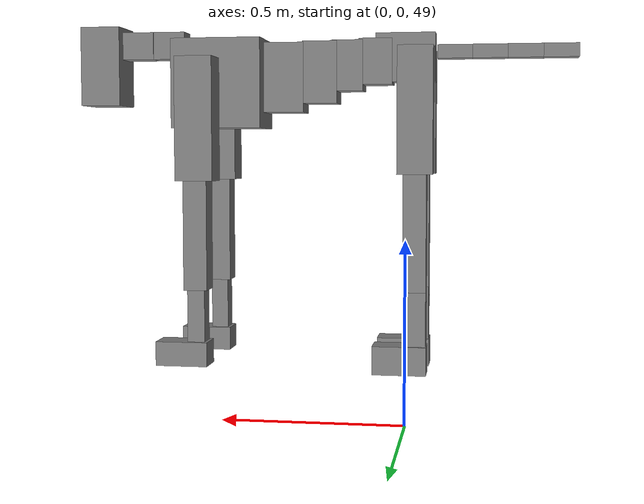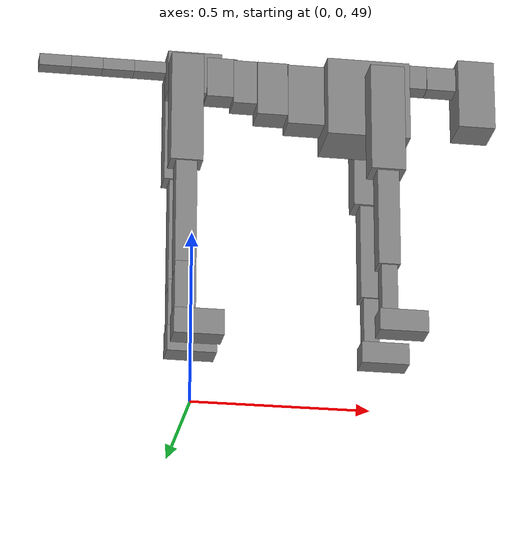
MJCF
<mujoco model="dog">

    <default>
        <joint armature="0.02" stiffness="1" damping="0.2" limited="true" />
        <geom condim="3" friction="1 0.05 0.05" margin="0.01" />
        <motor ctrllimited="true" ctrlrange="-1.0 1.0" forcelimited="true" gear="50" />
    </default>

    <compiler inertiafromgeom="true" angle="radian" />

    <option timestep="0.016" iterations="50" tolerance="1e-10" solver="Newton" jacobian="dense" cone="pyramidal" />

    <size nconmax="20000" njmax="60000" nstack="5000000" />
    <visual>
        <map force="0.1" zfar="30" />
        <rgba haze="0.15 0.25 0.35 1" />
        <quality shadowsize="2048" />
        <global offwidth="800" offheight="800" />
    </visual>

    <asset>
        <texture type="skybox" builtin="gradient" rgb1="0.3 0.5 0.7" rgb2="0 0 0" width="512" height="512" />
        <texture name="texplane" type="2d" builtin="checker" rgb1=".2 .3 .4" rgb2=".1 0.15 0.2" width="512" height="512" mark="cross" markrgb=".8 .8 .8" />
        <texture name="texgeom" type="cube" builtin="flat" mark="cross" width="127" height="1278" rgb1="0.8 0.6 0.4" rgb2="0.8 0.6 0.4" markrgb="1 1 1" random="0.01" />

        <material name="matplane" reflectance="0.3" texture="texplane" texrepeat="1 1" texuniform="true" />
        <material name="matgeom" texture="texgeom" texuniform="true" rgba="0.8 0.6 .4 1" />
    </asset>

    <worldbody>
        <geom name="floor" pos="0 0 0" size="0 0 .25" type="plane" material="matplane" condim="3" />

        <light directional="false" diffuse=".2 .2 .2" specular="0 0 0" pos="0 0 5" dir="0 0 -1" castshadow="false" />
        <light mode="targetbodycom" target="torso" directional="false" diffuse=".8 .8 .8" specular="0.3 0.3 0.3" pos="0 0 4.0" dir="0 0 -1" />

        <body name="root" pos="0 0 50">
            <freejoint name="root_1" />
            <geom type="box" pos="0 0 -0.02" size="0.0774  0.0358  0.063" density="2030" />

            <body name="spine1" pos="0.054 0 0">
                <joint name="spine1_y" axis="0 1 0" range="0 0.7" limited="true" />
                <geom type="box" pos="0.02375 0 -0.03" size="0.04375  0.0375  0.05985" density="2030" />

                <body name="spine2" pos="0.0612 0 0">
                    <joint name="spine2_y" axis="0 1 0" range="-0.15 0.15" limited="true" />
                    <geom type="box" pos="0.03555  0  -0.04" size="0.04055  0.039  0.06615" density="2030" />

                    <body name="spine3" pos="0.0730 0 0">
                        <joint name="spine3_y" axis="0 1 0" range="-0.15 0.15" limited="true" />
                        <geom type="box" pos="0.03555  0  -0.057" size="0.04555  0.0445  0.081" density="2030" />

                        <body name="spine4" pos="0.0780 0 0">
                            <joint name="spine4_y" axis="0 1 0" range="-0.15 0.15" limited="true" />
                            <geom type="box" pos="0.05265  0  -0.07" size="0.05265  0.045  0.09135" density="2030" />

                            <body name="torso" pos="0.1082 0 0">
                                <joint name="torso_y" axis="0 1 0" range="-0.15 0.15" limited="true" />
                                <geom type="box" pos="0.11925  0  -0.085" size="0.11925  0.085  0.11745" density="2030" />

                                <body name="neck1" pos="0.2160  0   0.0180">
                                    <joint name="neck1_y" axis="0 1 0" range="-1.2  -1" limited="true" />
                                    <geom type="box" pos="0.0423  0  0" size="0.0423  0.03  0.036" density="2325" />

                                    <body name="neck2" pos="0.0853  0  0">
                                        <joint name="neck2_y" axis="0 1 0" range="0.1  0" limited="true" />
                                        <geom type="box" pos="0.0423  0  0" size="0.0423  0.03  0.036" density="2325" />

                                        <body name="head" pos="0.0853  0  0">
                                            <joint name="head_y" axis="0 1 0" range="-0.3  -0.2" limited="true" />
                                            <geom type="box" pos="0.0531  0  -0.055" size="0.0531  0.06  0.1044" density="4030" />

                                        </body>
                                    </body>
                                </body>

                                <body name="front_shoulder" pos="0.156  0   -0.0480">
                                    <joint name="front_shoulder_y" axis="0 1 0" range="-1 1.5" limited="true" />
                                    <geom type="box" pos="0 0.13 -0.1328" size="0.0488  0.0417  0.1595" density="1158" />
                                    <geom type="box" pos="0 -0.13 -0.1328" size="0.0488  0.0417  0.1595" density="1158" />

                                    <body name="front_elbow" pos="0  0  -0.2657">
                                        <joint name="front_elbow_y" axis="0 1 0" range="-2 0" limited="true" />
                                        <geom type="box" pos="0 0.13 -0.1546" size="0.0307  0.0314  0.1546" density="1081" />
                                        <geom type="box" pos="0 -0.13 -0.1546" size="0.0307  0.0314  0.1546" density="1081" />

                                        <body name="front_wrist" pos="0  0  -0.3092">
                                            <joint name="front_wrist_y" axis="0 1 0" range="-0.2 0" limited="true" />
                                            <geom type="box" pos="0 0.13 -0.0749" size="0.0225  0.0250  0.0881" density="1664" />
                                            <geom type="box" pos="0 -0.13 -0.0749" size="0.0225  0.0250  0.0881" density="1664" />

                                            <body name="front_finger_end" pos="0  0  -0.1499">
                                                <joint name="front_finger_y" axis="0 1 0" range="-0.4 1" limited="true" />
                                                <geom type="box" pos="0.0371  0.13  -0.0165" size="0.0681  0.0371  0.0315" density="1515" />
                                                <geom type="box" pos="0.0371  -0.13  -0.0165" size="0.0681  0.0371  0.0315" density="1515" />

                                            </body>

                                        </body>
                                    </body>
                                </body>

                            </body>
                        </body>
                    </body>
                </body>
            </body>

            <body name="back_hip" pos="-0.03 0 -0.018">
                <joint name="back_hip_y" axis="0 1 0" range="-1.5 0.3" limited="true" />
                <geom type="box" pos="0 0.07 -0.1412" size="0.0458  0.0359  0.1640" density="1154" />
                <geom type="box" pos="0 -0.07 -0.1412" size="0.0458  0.0359  0.1640" density="1154" />

                <body name="back_knee" pos="0  0  -0.2824">
                    <joint name="back_knee_y" axis="0 1 0" range="0 2.8" limited="true" />
                    <geom type="box" pos="0 0.07 -0.1686" size="0.0298  0.0294  0.1841" density="1227" />
                    <geom type="box" pos="0 -0.07 -0.1686" size="0.0298  0.0294  0.1841" density="1227" />

                    <body name="back_ankle" pos="0  0  -0.3372">
                        <joint name="back_ankle_y" axis="0 1 0" range="-2.2 0" limited="true" />
                        <geom type="box" pos="0 0.07 -0.0721" size="0.0296  0.0296  0.0833" density="1284" />
                        <geom type="box" pos="0 -0.07 -0.0721" size="0.0296  0.0296  0.0833" density="1284" />

                        <body name="back_toe_end" pos="0  0  -0.1442">
                            <joint name="back_toe_y" axis="0 1 0" range="-0.4 1" limited="true" />
                            <geom type="box" pos="0.0381  0.07  -0.0221" size="0.0698  0.0381  0.0371" density="1515" />
                            <geom type="box" pos="0.0381  -0.07  -0.0221" size="0.0698  0.0381  0.0371" density="1515" />

                        </body>
                    </body>
                </body>
            </body>

            <body name="tail1" pos="-0.074 0 -0.006">
                <joint name="tail1_y" axis="0 1 0" range="-0.2 0.2" limited="true" />
                <geom type="box" pos="-0.0536  0  0" size="0.045  0.025  0.0175" density="1587" />

                <body name="tail2" pos="-0.09 0 0">
                    <joint name="tail2_y" axis="0 1 0" range="-0.2 0.2" limited="true" />
                    <geom type="box" pos="-0.0536  0  0" size="0.045  0.025  0.0175" density="1587" />

                    <body name="tail3" pos="-0.09 0 0">
                        <joint name="tail3_y" axis="0 1 0" range="-0.2 0.2" limited="true" />
                        <geom type="box" pos="-0.0536  0  0" size="0.045  0.025  0.0175" density="1587" />

                        <body name="tail4" pos="-0.09 0 0">
                            <joint name="tail4_y" axis="0 1 0" range="-0.2 0.2" limited="true" />
                            <geom type="box" pos="-0.0536  0  0" size="0.045  0.025  0.0175" density="1587" />

                        </body>
                    </body>
                </body>
            </body>
        </body>
    </worldbody>

    <actuator>
        <motor joint="spine1_y" forcerange="-150 150     " />
        <motor joint="spine2_y" forcerange="-150 150     " />
        <motor joint="spine3_y" forcerange="-150 150     " />
        <motor joint="spine4_y" forcerange="-150 150     " />
        <motor joint="torso_y" forcerange="-150 150     " />
        <motor joint="neck1_y" forcerange="-100 100       " />
        <motor joint="neck2_y" forcerange="-100 100       " />
        <motor joint="head_y" forcerange="-150 150       " />
        <motor joint="front_shoulder_y" forcerange="-185.25 192.95" />
        <motor joint="front_elbow_y" forcerange="-170.93 157.60" />
        <motor joint="front_wrist_y" forcerange="-100.27 100.03" />
        <motor joint="front_finger_y" forcerange="-60.45 97.67" />
        <motor joint="back_hip_y" forcerange="-351.12 327.83" />
        <motor joint="back_knee_y" forcerange="-308.33 318.59" />
        <motor joint="back_angle_y" forcerange="-155.11 219.15" />
        <motor joint="back_toe_y" forcerange="-137.93 86.53" />
        <motor joint="tail1_y" forcerange="-50 50     " />
        <motor joint="tail2_y" forcerange="-50 50     " />
        <motor joint="tail3_y" forcerange="-50 50     " />
        <motor joint="tail4_y" forcerange="-50 50     " />
    </actuator>
</mujoco>
